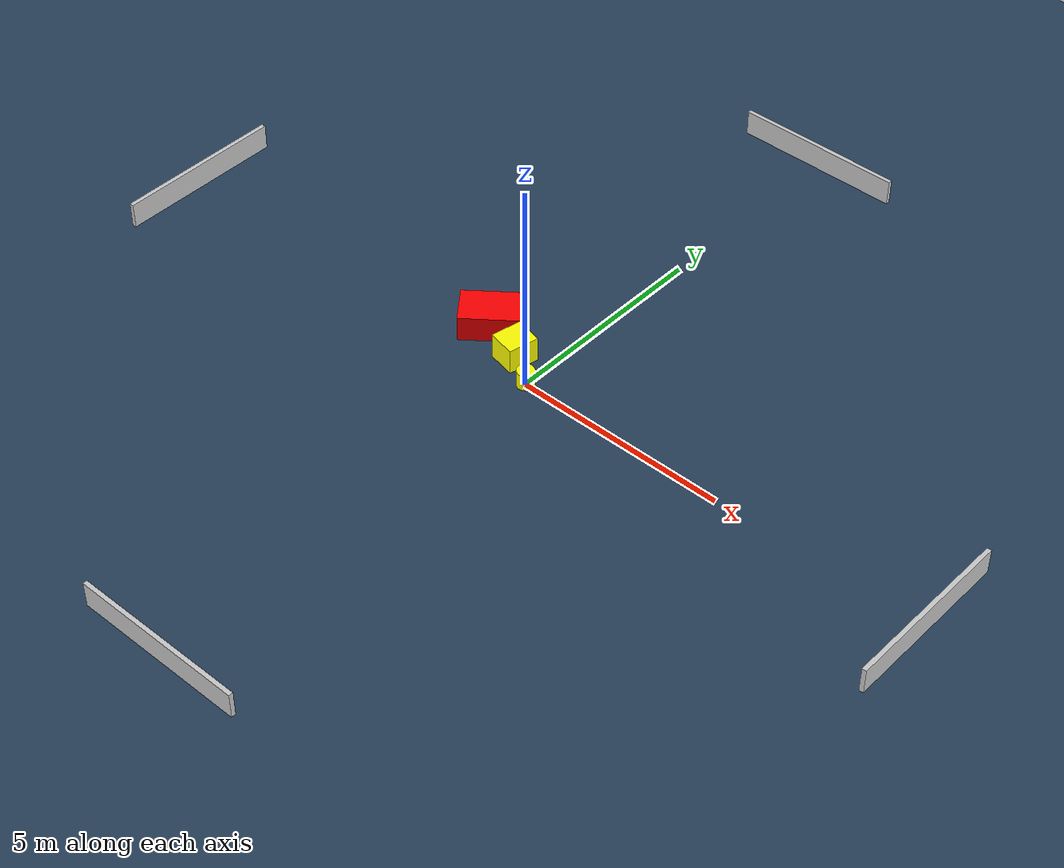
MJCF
<?xml version="1.0" ?>
<mujoco model="generated_environment">
  <option timestep="0.01" integrator="RK4" cone="elliptic"/>
  <default>
    <geom density="1"/>
  </default>
  <asset>
    <texture builtin="gradient" height="3072" name="skybox" rgb1="0.3 0.5 0.7" rgb2="0 0 0" type="skybox" width="512"/>
    <texture builtin="checker" height="300" name="groundplane" rgb1="0.2 0.3 0.4" rgb2="0.1 0.2 0.3" type="2d" width="300"/>
    <material name="groundplane" reflectance="0.2" texrepeat="5 5" texture="groundplane"/>
  </asset>
  <worldbody>
    <light dir="0 0 -1" directional="true" pos="0 0 1.5"/>
    <geom condim="3" friction="0.5 0.005 0.001" material="groundplane" name="floor" pos="0 0 0" size="0 0 0.05" type="plane"/>
    <body name="walls">
      <geom name="wall_1" condim="4" pos="-10.0 0.0 0.3" rgba="0.800000011920929 0.800000011920929 0.800000011920929 1.0" size="0.05 2.0 0.3" type="box"/>
      <geom name="wall_2" condim="4" pos="10.0 0.0 0.3" rgba="0.800000011920929 0.800000011920929 0.800000011920929 1.0" size="0.05 2.0 0.3" type="box"/>
      <geom name="wall_3" condim="4" pos="0.0 -10.0 0.3" rgba="0.800000011920929 0.800000011920929 0.800000011920929 1.0" size="2.0 0.05 0.3" type="box"/>
      <geom name="wall_4" condim="4" pos="0.0 10.0 0.3" rgba="0.800000011920929 0.800000011920929 0.800000011920929 1.0" size="2.0 0.05 0.3" type="box"/>
    </body>
    <body name="robot">
      <joint name="joint_x" type="slide" pos="0 0 0" axis="1 0 0"/>
      <joint name="joint_y" type="slide" pos="0 0 0" axis="0 1 0"/>
      <geom name="robot" type="cylinder" pos="0.0 0.0 0.2" size="0.2 0.2 0.0" mass="5.0" friction="1.0 0.005 0.0001" condim="4" rgba="1.0 1.0 0.0 1.0"/>
    </body>
    <body name="obstacle_1_movable">
      <geom name="obstacle_1_movable" condim="4" pos="-0.7148896751598087 0.45238894646165717 0.3" euler="0 0 257.8968525334163" friction="0.0 0.005 0.001" rgba="1.0 1.0 0.0 1.0" size="0.35461994458306634 0.3263944399951637 0.3" type="box" mass="0.1"/>
      <joint type="free"/>
    </body>
    <body name="obstacle_2_static">
      <geom name="obstacle_2_static" condim="4" pos="-1.751406371346779 0.8581292500234938 0.3" euler="0 0 128.23516179340612" friction="0.0 0.005 0.001" rgba="1.0 0.0 0.0 1.0" size="0.4613706783869332 0.6959411667071403 0.3" type="box"/>
    </body>
  </worldbody>
  <actuator>
    <motor name="actuator_x" joint="joint_x" gear="1" ctrlrange="-1 1"/>
    <motor name="actuator_y" joint="joint_y" gear="1" ctrlrange="-1 1"/>
  </actuator>
</mujoco>
